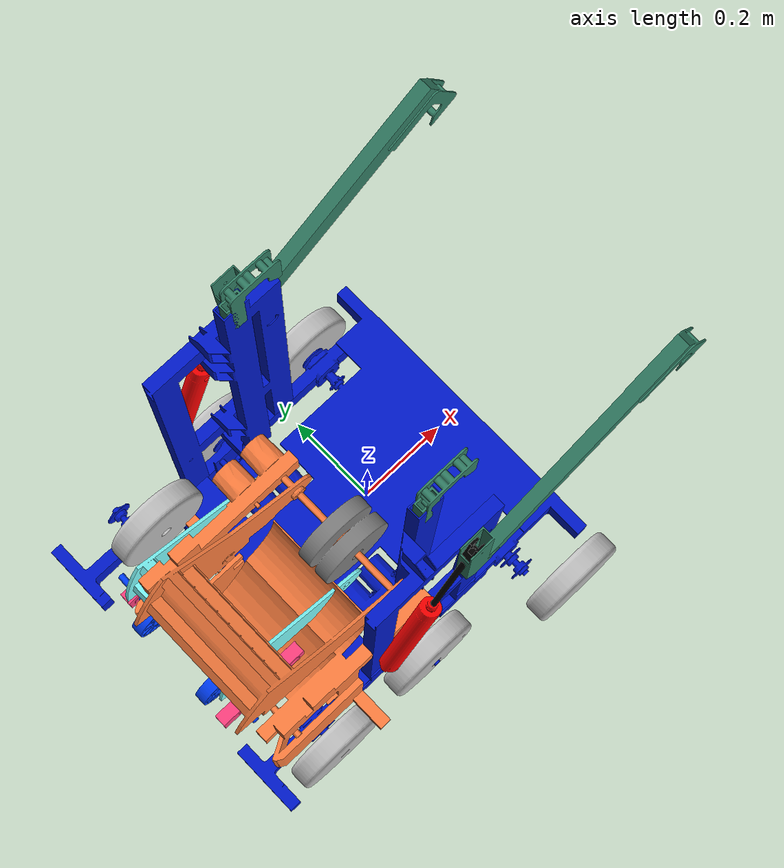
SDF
<?xml version="1.0" encoding="utf-8"?>
<sdf version="1.7">
  <model name="SimBot2022">
    <pose>0 0 0 0 0 0</pose>
    <link name="Frame">
      <gravity>1</gravity>
      <self_collide>0</self_collide>
      <pose>-0.0916854891449772 0 -0.0184942437490389 1.5707963267949 0 -1.5707963267949</pose>
      <must_be_base_link>1</must_be_base_link>
     <inertial>
        <mass>50</mass>
        <pose>0 0 0 0 0 0</pose>
        <inertia>
          <ixx>5</ixx>
          <ixy>0.014</ixy>
          <ixz>0.015</ixz>
          <iyy>7</iyy>
          <iyz>0</iyz>
          <izz>2</izz>
        </inertia>
      </inertial>
      <collision name="Frame_collision">
        <pose>0.087928821262285 -0.0052889773385317 0.00114418280918003 0 0 0</pose>
        <geometry>
          <mesh>
            <scale>1 1 1</scale>
            <uri>model://SimBot2022/meshes/Frame_col.STL</uri>
          </mesh>
        </geometry>
      </collision>
      <visual name="Frame_visual">
        <pose>0.087928821262285 -0.0052889773385317 0.00114418280918003 0 0 0</pose>
        <material>
         <ambient>0 0.1 0.8 1</ambient>
         <diffuse>0 0.1 0.8 1</diffuse>
        </material>
        <geometry>
          <mesh>
            <scale>1 1 1</scale>
            <uri>model://SimBot2022/meshes/Frame.STL</uri>
          </mesh>
        </geometry>
      </visual>
       <sensor name="BackCamera" type="camera">
        <visualize>0</visualize>
        <always_on>1</always_on>
        <pose>0.0 0.0 0.25 0 4.7 4.71238898038469</pose>
        <camera name="intakecamera">
          <horizontal_fov>1.04</horizontal_fov>
          <image>
            <width>640</width>
            <height>480</height>
            <format>R8G8B8</format>
          </image>
          <clip>
            <near>0.01</near>
            <far>50</far>
          </clip>
        </camera>
        <plugin name="camera2" filename="sim_camera.dll">
          <topic>~/gazebo/frc/simulator/camera/1</topic>
          <port>9001</port>
          <fps>20</fps>
          <enabled>true</enabled>
          <savepath>tmp</savepath>
          <maxframes>0</maxframes>
          <video>back.avi</video>
        </plugin>
      </sensor>
    </link>
    <link name="shooter">
      <self_collide>0</self_collide>
      <pose>-0.339857661155341 0.00613558288465832 0.112751803631496 1.5707963267949 0 -1.5707963267949</pose>
      <must_be_base_link>0</must_be_base_link>
      <gravity>1</gravity>
      <inertial>
        <mass>5.22101990724176</mass>
        <pose>0 0 0 0 0 0</pose>
      </inertial>
      <collision name="shooter_collision">
        <pose>0.094064405138414 -0.136535024719067 -0.247027989201184 0 0 0</pose>
        <geometry>
          <mesh>
            <scale>1 1 1</scale>
            <uri>model://SimBot2022/meshes/shooter.STL</uri>
          </mesh>
        </geometry>
        <surface>
          <contact>
              <ode>
              <min_depth>0.001</min_depth>
              <kp>1e8</kp>
              <kd>1000</kd>
            </ode>
          </contact>
           <friction>
            <ode>
              <mu>0</mu>
              <mu2>0</mu2>
              <slip1>0.9</slip1>
              <slip2>0.9</slip2>
            </ode>
          </friction>
        </surface>
      </collision>
      <visual name="shooter_visual">
        <pose>0.094064405138414 -0.136535024719067 -0.247027989201184 0 0 0</pose>
        <material>
         <ambient>1 0.5 0.25 1</ambient>
          <diffuse>1 0.5 0.25 1</diffuse>
        </material>
        <geometry>
          <mesh>
            <scale>1 1 1</scale>
            <uri>model://SimBot2022/meshes/shooter.STL</uri>
          </mesh>
        </geometry>
      </visual>
      <sensor name="Frontcamera" type="camera">
        <visualize>0</visualize>
        <always_on>1</always_on>
        <pose>0.0 0.25 -0.3 0 0.9 1.57</pose>
        <camera name="frontcamera">
          <horizontal_fov>1.04</horizontal_fov>
           <image>
            <width>640</width>
            <height>480</height>
            <format>R8G8B8</format>
          </image>
          <clip>
            <near>0.1</near>
            <far>100</far>
          </clip>
        </camera>
        <plugin name="camera1" filename="sim_camera.dll">
          <topic>~/gazebo/frc/simulator/camera/0</topic>
          <port>9000</port>
          <fps>20</fps>
          <enabled>true</enabled>
          <savepath>tmp</savepath>
          <maxframes>0</maxframes>
          <video>front.avi</video>
        </plugin>
      </sensor>
    </link>
    <joint name="Frame-shooter" type="revolute">
      <parent>Frame</parent>
      <child>shooter</child>
      <axis>
        <xyz>1 0 0</xyz>
          <limit>
          <upper>0.0</upper>
          <lower>0.0</lower>
          </limit>
      </axis>
    </joint>
    <link name="ShooterWheels">
      <gravity>1</gravity>
      <self_collide>0</self_collide>
      <pose>-0.177655024091721 0.0 0.196849999999108 1.5707963267949 0 -1.5707963267949</pose>
      <must_be_base_link>0</must_be_base_link>
      <inertial>
        <mass>1e-2</mass>
        <pose>0 0 0 0 0 0</pose>
          <inertia>
          <ixx>0</ixx>
          <ixy>0</ixy>
          <ixz>0</ixz>
          <iyy>0</iyy>
          <iyz>0</iyz>
          <izz>0</izz>
        </inertia>
      </inertial>

      <collision name="ShooterWheels_collision">
        <pose>0.0854209462093988 -0.220633221086678 -0.0848253521375637 0 0 0</pose>
        <geometry>
          <mesh>
            <scale>1 1 1</scale>
            <uri>model://SimBot2022/meshes/ShooterWheels_col.STL</uri>
          </mesh>
        </geometry>
        <surface>
          <contact>
            <ode>
              <kd>10</kd>
              <kp>5e6</kp>
              <soft_cfm>2.0</soft_cfm>
              <min_depth>0.001</min_depth>
            </ode>
          </contact>
          <friction>
            <ode>
              <mu>2</mu>
              <mu2>2</mu2>
            </ode>
          </friction>
        </surface>
      </collision>
      <visual name="ShooterWheels_visual">
        <pose>0.0854209462093988 -0.220633221086678 -0.0848253521375637 0 0 0</pose>
        <material>
          <ambient>0.501960784313725 0.501960784313725 0.501960784313725 1</ambient>
          <diffuse>0.501960784313725 0.501960784313725 0.501960784313725 1</diffuse>
        </material>
        <geometry>
          <mesh>
            <scale>1 1 1</scale>
            <uri>model://SimBot2022/meshes/ShooterWheels.STL</uri>
          </mesh>
        </geometry>
      </visual>
    </link>
    <link name="LimitSwitch">
      <gravity>1</gravity>
      <self_collide>0</self_collide>
      <pose>-0.31 -0.00167438091144598 0.0190079876439564 1.5707963267949 0 -1.5707963267949</pose>
      <must_be_base_link>0</must_be_base_link>
      <inertial>
        <mass>0.00457179713622319</mass>
        <pose>0 0 0 0 0 0</pose>
        <inertia>
          <ixx>0</ixx>
          <ixy>0</ixy>
          <ixz>0</ixz>
          <iyy>0</iyy>
          <iyz>0</iyz>
          <izz>0</izz>
        </inertia>
      </inertial>
      <collision name="LimitSwitch_collision">
        <pose>0.0862544413423097 -0.042791208731527 -0.20010896601299 0 0 0</pose>
        <geometry>
          <mesh>
            <scale>1.0 1.0 1.0</scale>
            <uri>model://SimBot2022/meshes/LimitSwitch_col.STL</uri>
          </mesh>
        </geometry>
         <friction>
            <ode>
              <mu>0</mu>
              <mu2>0</mu2>
            </ode>
          </friction>
        <surface>
          <contact>
           <ode>
            <kd>10</kd>
            <kp>10</kp>
          </ode>
          </contact>
        </surface>

      </collision>
      <visual name="LimitSwitch_visual">
        <pose>0.0862544413423097 -0.042791208731527 -0.20010896601299 0 0 0</pose>
        <material>
          <ambient>1 0 0 1</ambient>
          <diffuse>1 0 0 1</diffuse>
        </material>
        <geometry>
          <mesh>
            <scale>1.0 1.0 1.0</scale>
            <uri>model://SimBot2022/meshes/LimitSwitch.STL</uri>
          </mesh>
        </geometry>
      </visual>
      <sensor name="LimitSwitch_contact" type="contact">
        <always_on>1</always_on>
        <contact>
          <collision>LimitSwitch_collision</collision>
        </contact>

        <plugin name="contact_test" filename="sim_contact.dll">
          <topic>~/gazebo/frc/simulator/contact/0</topic>
        </plugin>
      </sensor>
    </link>
    <joint name="shooter-LimitSwitch" type="fixed">
      <parent>Frame</parent>
      <child>LimitSwitch</child>
       <pose>0.26 -1.85 0.13 0 0 0</pose>
      <axis>
        <xyz>1 0 0</xyz>
        <limit>
          <upper>0</upper>
          <lower>0</lower>
        </limit>
      </axis>
    </joint>
    <joint name="shooter-ShooterWheels" type="revolute">
      <parent>shooter</parent>
      <child>ShooterWheels</child>
      <pose>0 0 0 0 0 0</pose>
      <axis>
        <xyz>1 0 0</xyz>
      </axis>
    </joint>
    <link name="Shield">
      <gravity>1</gravity>
      <self_collide>0</self_collide>
      <pose>-0.382938517439548 -6.05657531295434E-05 0.270040381431298 1.5707963267949 0 -1.5707963267949</pose>
      <must_be_base_link>0</must_be_base_link>

      <inertial>
        <mass>1e-2</mass>
        <pose>0 0 0 0 0 0</pose>
        <inertia>
          <ixx>0.00558354491864702</ixx>
          <ixy>0</ixy>
          <ixz>0</ixz>
          <iyy>0.0140256747777912</iyy>
          <iyz>0.0016963246209557</iyz>
          <izz>0.0112740976678991</izz>
        </inertia>
      </inertial>
      <collision name="Shield_collision">
        <pose>0.0878682565006262 -0.293823602518869 -0.290108845485391 0 0 0</pose>
        <geometry>
          <mesh>
            <scale>1 1 1</scale>
            <uri>model://SimBot2022/meshes/Shield.STL</uri>
          </mesh>
        </geometry>
        <surface>
          <contact>
            <ode />
          </contact>
          <friction>
            <ode>
              <mu>0</mu>
              <mu2>0</mu2>
            </ode>
          </friction>
        </surface>
      </collision>
      <visual name="Shield_visual">
        <pose>0.0878682565006262 -0.293823602518869 -0.290108845485391 0 0 0</pose>
        <material>
          <ambient>0.501960784313725 1 1 1</ambient>
          <diffuse>0.501960784313725 1 1 1</diffuse>
        </material>
        <geometry>
          <mesh>
            <scale>1 1 1</scale>
            <uri>model://SimBot2022/meshes/Shield.STL</uri>
          </mesh>
        </geometry>
      </visual>
    </link>
    <joint name="shooter-Shield" type="revolute">
      <parent>shooter</parent>
      <child>Shield</child>
      <pose>0 -0.0731903814322627 -0.205283493605891 0 0 0</pose>
      <axis>
        <xyz>-1 0 0</xyz>
        <dynamics>
          <damping>0</damping>
          <friction>0</friction>
        </dynamics>
        <limit>
          <upper>-0.1</upper>
          <lower>-0.1</lower>
          <effort>1</effort>
        </limit>
      </axis>
    </joint>
    <link name="Intake">
      <gravity>1</gravity>
      <self_collide>0</self_collide>
      <pose>-0.424484874242734 9.92754253803518E-09 0.120699564654734 1.5707963267949 0 -1.5707963267949</pose>
      <must_be_base_link>0</must_be_base_link>
      <inertial>
        <mass>1e-2</mass>
        <pose>0 0 0 0 0 0</pose>
        <inertia>
          <ixx>0</ixx>
          <ixy>0</ixy>
          <ixz>0</ixz>
          <iyy>0</iyy>
          <iyz>0</iyz>
          <izz>0</izz>
        </inertia>
      </inertial>
      <collision name="Intake_collision">
        <pose>0.0879288321812983 -0.144482785742305 -0.331655202288577 0 0 0</pose>
        <geometry>
          <mesh>
            <scale>1 1 1</scale>
            <uri>model://SimBot2022/meshes/Intake.STL</uri>
          </mesh>
        </geometry>
        <surface>
          <contact>
            <ode>
            </ode>
          </contact>
          <friction>
            <ode>
              <mu>1</mu>
              <mu2>1</mu2>
            </ode>
          </friction>
        </surface>
      </collision>
      <visual name="Intake_visual">
        <pose>0.0879288321812983 -0.144482785742305 -0.331655202288577 0 0 0</pose>
        <material>
          <ambient>1 0.250980392156863 0.501960784313725 1</ambient>
          <diffuse>1 0.250980392156863 0.501960784313725 1</diffuse>
        </material>
        <geometry>
          <mesh>
            <scale>1 1 1</scale>
            <uri>model://SimBot2022/meshes/Intake.STL</uri>
          </mesh>
        </geometry>
      </visual>
    </link>
    <link name="Climber">
      <gravity>1</gravity>
      <self_collide>0</self_collide>
      <pose>-0.108165830024222 -0.00754421414214484 0.403396336666603 1.5707963267949 0 -1.5707963267949</pose>
      <must_be_base_link>0</must_be_base_link>

      <inertial>
        <mass>1e-2</mass>
        <pose>0 0 0 0 0 0</pose>
        <inertia>
          <ixx>0.180340671375589</ixx>
          <ixy>0.0178859329714001</ixy>
          <ixz>3.69107620819764E-05</ixz>
          <iyy>0.376849226291127</iyy>
          <iyz>0.00174995637583662</iyz>
          <izz>0.483303651275777</izz>
        </inertia>
      </inertial>
      <collision name="Climber_collision">
        <pose>0.0803846081116108 -0.427179557754174 -0.0153361580700651 0 0 0</pose>
        <geometry>
          <mesh>
            <scale>1 1 1</scale>
            <uri>model://SimBot2022/meshes/Climber.STL</uri>
          </mesh>
        </geometry>
        <surface>
          <contact>
            <ode />
          </contact>
          <friction>
            <ode>
              <mu>0</mu>
              <mu2>0</mu2>
            </ode>
          </friction>
        </surface>
      </collision>
      <visual name="Climber_visual">
        <pose>0.0803846081116108 -0.427179557754174 -0.0153361580700651 0 0 0</pose>
        <material>
          <ambient>0 0.1 0.8 1</ambient>
          <diffuse>0 0.1 0.8 1</diffuse>
        </material>
        <geometry>
          <mesh>
            <scale>1 1 1</scale>
            <uri>model://SimBot2022/meshes/Climber.STL</uri>
          </mesh>
        </geometry>
      </visual>
    </link>
    <joint name="Frame-Climber" type="fixed">
      <parent>Frame</parent>
      <child>Climber</child>
      <pose>0.0803846081116108 -0.427179557754174 -0.0153361580700651 0 0 0</pose>
      <axis>
        <xyz>0 0 0</xyz>
        <dynamics>
          <damping>0</damping>
          <friction>0</friction>
        </dynamics>
        <limit>
          <upper>0</upper>
          <lower>0</lower>
          <effort>1</effort>
        </limit>
      </axis>
    </joint>

    <link name="VertHooks">
      <gravity>1</gravity>
      <self_collide>0</self_collide>
      <pose>-0.0899896312618392 0 0.6 1.5707963267949 0 -1.5707963267949</pose>
      <must_be_base_link>0</must_be_base_link>
      <inertial>
        <mass>1e-2</mass>
        <pose>0 0 0 0 0 0</pose>
        <inertia>
          <ixx>0.00137697291971476</ixx>
          <ixy>0</ixy>
          <ixz>0</ixz>
          <iyy>0.005964984736658</iyy>
          <iyz>0.000120054703079532</iyz>
          <izz>0.00731302280905016</izz>
        </inertia>
      </inertial>
      <collision name="VertHooks_collision">
        <pose>0.0879288222537543 -1.0367472399474 0.00284004069231772 0 0 0</pose>
        <geometry>
          <mesh>
            <scale>1 1 1</scale>
            <uri>model://SimBot2022/meshes/VertHooks.STL</uri>
          </mesh>

        </geometry>
         <surface>
          <contact>
            <ode>
              <min_depth>0.0001</min_depth>
              <kd>1</kd>
              <kp>1e9</kp>
            </ode>
          </contact>
          <friction>
            <ode>
              <mu>1</mu>
              <mu2>1</mu2>
            </ode>
          </friction>
        </surface>

      </collision>
      <visual name="VertHooks_visual">
        <pose>0.0879288222537543 -1.0367472399474 0.00284004069231772 0 0 0</pose>
        <material>
          <ambient>0.2 0.5 0.4 1</ambient>
          <diffuse>0.2 0.5 0.4 1</diffuse>
        </material>
        <geometry>
          <mesh>
            <scale>1 1 1</scale>
            <uri>model://SimBot2022/meshes/VertHooks.STL</uri>
          </mesh>
        </geometry>
      </visual>
    </link>
    <joint name="Climber-VertHooks" type="prismatic">
      <parent>Climber</parent>
      <child>VertHooks</child>
      <pose>0 0.0 0 0 0 0</pose>
      <pose>-0.19685 0 0.0312719304731663 0 0 0</pose>
      <axis>
        <xyz>0 1 0</xyz>
        <dynamics>
          <damping>6</damping>
          <friction>1</friction>
        </dynamics>

        <limit>
          <upper>0.6</upper>
          <lower>0</lower>
          <velocity>8</velocity>
        </limit>

      </axis>
    </joint>

    <link name="DiagHooks">
      <gravity>1</gravity>
      <self_collide>0</self_collide>
      <pose>0.183295209439459 0.00126999999999841 0.665732235239805 1.5707963267949 0 -1.5707963267949</pose>
      <must_be_base_link>0</must_be_base_link>

      <inertial>
        <mass>1e-2</mass>
        <pose>0 0 0 0 0 0</pose>
        <inertia>
          <ixx>0.00764916813046532</ixx>
          <ixy>0.000424936229635824</ixy>
          <ixz>0.000704880198439671</ixz>
          <iyy>0.146329646890558</iyy>
          <iyz>0.00076342518268873</iyz>
          <izz>0.138856767131751</izz>
        </inertia>
      </inertial>
      <collision name="DiagHooks_collision">
        <pose>0.089198822253754 -0.689515456327376 0.276124881393616 0 0 0</pose>
        <geometry>
          <mesh>
            <scale>1 1 1</scale>
            <uri>model://SimBot2022/meshes/DiagHooks.STL</uri>
          </mesh>
        </geometry>
        <surface>
          <contact>
            <ode>
              <min_depth>0.001</min_depth>
              <kd>1</kd>
              <kp>1e7</kp>
            </ode>
          </contact>
          <friction>
            <ode>
              <mu>1</mu>
              <mu2>1</mu2>
            </ode>
          </friction>
        </surface>
      </collision>
      <visual name="DiagHooks_visual">
        <pose>0.089198822253754 -0.689515456327376 0.276124881393616 0 0 0</pose>
        <material>
          <ambient>0.2 0.5 0.4 1</ambient>
          <diffuse>0.2 0.5 0.4 1</diffuse>
        </material>
        <geometry>
          <mesh>
            <scale>1 1 1</scale>
            <uri>model://SimBot2022/meshes/DiagHooks.STL</uri>
          </mesh>
        </geometry>
      </visual>
    </link>
    <joint name="Climber-DiagHooks" type="revolute">
      <parent>Climber</parent>
      <child>DiagHooks</child>
      <pose>0 -0.113282237666155 0.177556774409909 0 0 0</pose>

      <axis>
        <xyz>1 0 0</xyz>
        <dynamics>
          <damping>0</damping>
          <friction>0</friction>
        </dynamics>
        <limit>
          <upper>1.5</upper>
          <lower>-0.5</lower>

        </limit>
      </axis>
    </joint>
    <joint name="DiagHooks-PistonRods" type="revolute">
      <parent>DiagHooks</parent>
      <child>PistonRods</child>
      <pose>0 0.0104158787113845 0.0117395065044273 0 0 0</pose>
      <axis>
        <xyz>1 0 0</xyz>
        <dynamics>
          <damping>0</damping>
          <friction>0</friction>
        </dynamics>
      </axis>
    </joint>
    <link name="Piston">
      <gravity>1</gravity>
      <self_collide>0</self_collide>
      <pose>-0.174869870786539 0.00227777821870752 0.368539982718424 1.5707963267949 0 -1.5707963267949</pose>
      <must_be_base_link>0</must_be_base_link>
      <inertial>
        <mass>1e-2</mass>
        <pose>0 0 0 0 0 0</pose>
        <inertia>
          <ixx>2.98130535270462E-05</ixx>
          <ixy>0</ixy>
          <ixz>0</ixz>
          <iyy>1.19795285458249E-04</iyy>
          <iyz>0</iyz>
          <izz>1.44652851851309E-04</izz>
        </inertia>
      </inertial>
      <collision name="Piston_collision">
        <pose>0.0902066004724632 -0.392323203805995 -0.0820401988323822 0 0 0</pose>
        <geometry>
          <mesh>
            <scale>1 1 1</scale>
            <uri>model://SimBot2022/meshes/Piston.STL</uri>
          </mesh>
        </geometry>
        <surface>
          <contact>
            <ode />
          </contact>
          <friction>
            <ode>
              <mu>0</mu>
              <mu2>0</mu2>
            </ode>
          </friction>
        </surface>
      </collision>
      <visual name="Piston_visual">
        <pose>0.0902066004724632 -0.392323203805995 -0.0820401988323822 0 0 0</pose>
        <material>
          <ambient>1 0 0 1</ambient>
          <diffuse>1 0 0 1</diffuse>
        </material>
        <geometry>
          <mesh>
            <scale>1 1 1</scale>
            <uri>model://SimBot2022/meshes/Piston.STL</uri>
          </mesh>
        </geometry>
      </visual>
    </link>
    <joint name="Climber-Piston" type="revolute">
      <parent>Climber</parent>
      <child>Piston</child>
      <pose>0 -0.171689985144763 0.0 0 0 0</pose>
      <axis>
        <xyz>1 0 0</xyz>
        <dynamics>
          <damping>0</damping>
          <friction>0</friction>
        </dynamics>
      </axis>
    </joint>
    <link name="PistonRods">
      <gravity>1</gravity>
      <self_collide>0</self_collide>
      <pose>-0.0828529879447265 0.00196850000000066 0.675813105104607 1.5707963267949 0 -1.5707963267949</pose>
      <must_be_base_link>0</must_be_base_link>

      <inertial>
        <mass>1e-2</mass>
        <pose>0 0 0 0 0 0</pose>
        <inertia>
          <ixx>4.36637761620829E-05</ixx>
          <ixy>6.21299586628527E-05</ixy>
          <ixz>9.81932445003251E-05</ixz>
          <iyy>0.0016465181163977</iyy>
          <iyz>1.34053408966147E-05</iyz>
          <izz>0.00167258481144701</izz>
        </inertia>
      </inertial>
      <collision name="PistonRods_collision">
        <pose>0.0898973222537563 -0.699596326192178 0.00997668400943053 0 0 0</pose>
        <geometry>
          <mesh>
            <scale>1 1 1</scale>
            <uri>model://SimBot2022/meshes/PistonRods.STL</uri>
          </mesh>
        </geometry>
        <surface>
          <contact>
            <ode />
          </contact>
          <friction>
            <ode>
              <mu>0</mu>
              <mu2>0</mu2>
            </ode>
          </friction>
        </surface>
      </collision>
      <visual name="PistonRods_visual">
        <pose>0.0898973222537563 -0.699596326192178 0.00997668400943053 0 0 0</pose>
        <material>
          <ambient>0 0 0 1</ambient>
          <diffuse>0 0 0 1</diffuse>
        </material>
        <geometry>
          <mesh>
            <scale>1 1 1</scale>
            <uri>model://SimBot2022/meshes/PistonRods.STL</uri>
          </mesh>
        </geometry>
      </visual>
    </link>
    <joint name="Piston-PistonRods" type="prismatic">
      <parent>Piston</parent>
      <child>PistonRods</child>
      <pose>0.292100000000002 0.00364184932885847 0.0135589700495809 0 0 0</pose>
      <axis>
        <xyz>6.47015957867634E-16 -0.965770063546253 0.259399661445165</xyz>
        <dynamics>
          <damping>0</damping>
          <friction>0</friction>
        </dynamics>
        <limit>
          <upper>0.5</upper>
          <lower>-0.4</lower>
          <velocity>0.5</velocity>
        </limit>
      </axis>
    </joint>
    <joint name="shooter-Intake" type="revolute">
      <parent>shooter</parent>
      <child>Intake</child>
      <pose>0.0879288321812983 -0.144482785742305 -0.331655202288577 0 0 0</pose>
      <axis>
        <xyz>-1 0 0</xyz>
        <dynamics>
          <damping>4</damping>
          <friction>1</friction>
        </dynamics>

        <limit>
          <upper>-0.01</upper>
          <lower>-0.15</lower>
        </limit>
      </axis>
    </joint>
    <link name="IntakeWheels">
      <gravity>1</gravity>
      <self_collide>0</self_collide>
      <pose>-0.469753566757535 -0.0108552498965759 0.120727981986896 1.5707963267949 0 -1.5707963267949</pose>
      <must_be_base_link>0</must_be_base_link>
      <inertial>
        <mass>1e-2</mass>
        <pose>0 0 0 0 0 0</pose>
        <inertia>
          <ixx>0</ixx>
          <ixy>0</ixy>
          <ixz>0</ixz>
          <iyy>0</iyy>
          <iyz>0</iyz>
          <izz>0</izz>
        </inertia>
      </inertial>
      <collision name="IntakeWheels_collision">
        <pose>0.0770735723571798 -0.144511203074467 -0.376923894803378 0 0 0</pose>
        <geometry>
          <mesh>
            <scale>1 1 1</scale>
            <uri>model://SimBot2022/meshes/IntakeWheels_col.STL</uri>
          </mesh>
        </geometry>
        <surface>
          <contact>
            <ode>
              <min_depth>0.0001</min_depth>
              <soft_cfm>2.0</soft_cfm>
              <kd>10</kd>
              <kp>1e6</kp>
            </ode>
          </contact>
          <friction>
            <ode>
              <mu>2</mu>
              <mu2>2</mu2>
            </ode>
          </friction>
        </surface>
      </collision>
      <visual name="IntakeWheels_visual">
        <pose>0.0770735723571798 -0.144511203074467 -0.376923894803378 0 0 0</pose>
        <material>
          <ambient>0 0.250980392156863 1 1</ambient>
          <diffuse>0 0.250980392156863 1 1</diffuse>
        </material>
        <geometry>
          <mesh>
            <scale>1 1 1</scale>
            <uri>model://SimBot2022/meshes/IntakeWheels.STL</uri>
          </mesh>
        </geometry>
      </visual>
    </link>
    <joint name="Intake-IntakeWheels" type="revolute">
      <parent>Intake</parent>
      <child>IntakeWheels</child>
      <pose>0 0 0 0 0 0</pose>
      <axis>
        <xyz>1 0 0</xyz>
        <dynamics>
          <damping>2</damping>
          <friction>1</friction>
        </dynamics>
        <limit>
          <effort>50</effort>
        </limit>
      </axis>
    </joint>
    <link name="LFWheel">
      <gravity>1</gravity>
      <self_collide>0</self_collide>
      <pose>-0.383733921516064 -0.315899209940694 -0.0302259999999987 1.5707963267949 0 -1.5707963267949</pose>
      <must_be_base_link>0</must_be_base_link>
      <velocity_decay>
        <linear>0</linear>
        <angular>0.03</angular>
      </velocity_decay>
      <inertial>
        <mass>1</mass>
        <pose>0 0 0 0 0 0</pose>
        <inertia>
          <ixx>0.00636122013463714</ixx>
          <ixy>0</ixy>
          <ixz>1.02386629412868E-19</ixz>
          <iyy>0.00340889332640425</iyy>
          <iyz>0</iyz>
          <izz>0.00340889332640425</izz>
        </inertia>
      </inertial>
      <collision name="LFWheel_collision">
        <pose>-0.227970387686939 0.00644277891242817 -0.290904249561907 0 0 0</pose>
        <geometry>
          <mesh>
            <scale>1 1 1</scale>
            <uri>model://SimBot2022/meshes/LFWheel_col.STL</uri>
          </mesh>
        </geometry>
        <surface>
          <contact>
          <ode>
            <kd>25</kd>
            <kp>1e7</kp>
            <min_depth>0.0001</min_depth>
          </ode>
          </contact>
              <friction>
                <ode>
                  <mu>2</mu>
                  <mu2>2</mu2>
                </ode>
              </friction>
          </surface>
      </collision>
      <visual name="LFWheel_visual">
        <pose>-0.227970387686939 0.00644277891242817 -0.290904249561907 0 0 0</pose>
        <material>
          <ambient>0.752941176470588 0.752941176470588 0.752941176470588 1</ambient>
          <diffuse>0.752941176470588 0.752941176470588 0.752941176470588 1</diffuse>
        </material>
        <geometry>
          <mesh>
            <scale>1 1 1</scale>
            <uri>model://SimBot2022/meshes/LFWheel.STL</uri>
          </mesh>
        </geometry>
      </visual>
    </link>
    <joint name="Frame-LFWheel" type="revolute">
      <parent>Frame</parent>
      <child>LFWheel</child>
      <pose>0 0 0 0 0 0</pose>
      <axis>
        <xyz>-1 0 0</xyz>
        <dynamics>
          <damping>2</damping>
          <friction>1</friction>
        </dynamics>
        <limit>
          <effort>50</effort>
        </limit>
      </axis>
    </joint>
    <link name="LCWheel">
      <gravity>1</gravity>
      <self_collide>0</self_collide>
      <pose>-0.129733921516064 -0.311136709940694 -0.0302259999999999 1.5707963267949 0 -1.5707963267949</pose>
      <must_be_base_link>0</must_be_base_link>
      <velocity_decay>
        <linear>0</linear>
        <angular>0.03</angular>
      </velocity_decay>
      <inertial>
        <mass>1</mass>
        <pose>0 0 0 0 0 0</pose>
        <inertia>
          <ixx>0.00636122013463714</ixx>
          <ixy>7.97906990264509E-20</ixy>
          <ixz>1.02386629412868E-19</ixz>
          <iyy>0.00340889332640425</iyy>
          <iyz>3.68262106610134E-19</iyz>
          <izz>0.00340889332640425</izz>
        </inertia>
      </inertial>
      <collision name="LCWheel_collision">
        <pose>-0.223207887686939 0.00644277891242926 -0.0369042495619069 0 0 0</pose>
        <geometry>
          <mesh>
            <scale>1 1 1</scale>
            <uri>model://SimBot2022/meshes/LCWheel_col.STL</uri>
          </mesh>
        </geometry>
        <surface>
          <contact>
          <ode>
            <kd>25</kd>
            <kp>1e7</kp>
            <min_depth>0.0001</min_depth>
          </ode>
          </contact>
              <friction>
                <ode>
                  <mu>2</mu>
                  <mu2>2</mu2>
                </ode>
              </friction>
          </surface>
      </collision>
      <visual name="LCWheel_visual">
        <pose>-0.223207887686939 0.00644277891242926 -0.0369042495619069 0 0 0</pose>
        <material>
          <ambient>0.752941176470588 0.752941176470588 0.752941176470588 1</ambient>
          <diffuse>0.752941176470588 0.752941176470588 0.752941176470588 1</diffuse>
        </material>
        <geometry>
          <mesh>
            <scale>1 1 1</scale>
            <uri>model://SimBot2022/meshes/LCWheel.STL</uri>
          </mesh>
        </geometry>
      </visual>
    </link>
    <joint name="Frame-LCWheel" type="revolute">
      <parent>Frame</parent>
      <child>LCWheel</child>
      <pose>0 0 0 0 0 0</pose>
      <axis>
        <xyz>-1 0 0</xyz>
        <dynamics>
          <damping>2</damping>
          <friction>1</friction>
        </dynamics>
        <limit>
          <effort>50</effort>
        </limit>
      </axis>
    </joint>
    <link name="LBWheel">
      <gravity>1</gravity>
      <self_collide>0</self_collide>
      <pose>0.124266078483936 -0.315899209940694 -0.030226000000001 1.5707963267949 0 -1.5707963267949</pose>
      <must_be_base_link>0</must_be_base_link>
      <velocity_decay>
        <linear>0</linear>
        <angular>0.03</angular>
      </velocity_decay>
      <inertial>
        <mass>1</mass>
        <pose>0 0 0 0 0 0</pose>
        <inertia>
          <ixx>0.00636122013463714</ixx>
          <ixy>7.97906990264509E-20</ixy>
          <ixz>1.02386629412868E-19</ixz>
          <iyy>0.00340889332640425</iyy>
          <iyz>3.68262106610134E-19</iyz>
          <izz>0.00340889332640425</izz>
        </inertia>
      </inertial>
      <collision name="LBWheel_collision">
        <pose>-0.227970387686938 0.00644277891243034 0.217095750438093 0 0 0</pose>
        <geometry>
          <mesh>
            <scale>1 1 1</scale>
            <uri>model://SimBot2022/meshes/LBWheel_col.STL</uri>
          </mesh>
        </geometry>
        <surface>
          <contact>
          <ode>
            <kd>25</kd>
            <kp>1e7</kp>
            <min_depth>0.0001</min_depth>
          </ode>
          </contact>
              <friction>
                <ode>
                  <mu>2</mu>
                  <mu2>2</mu2>
                </ode>
              </friction>
          </surface>
      </collision>
      <visual name="LBWheel_visual">
        <pose>-0.227970387686938 0.00644277891243034 0.217095750438093 0 0 0</pose>
        <material>
          <ambient>0.752941176470588 0.752941176470588 0.752941176470588 1</ambient>
          <diffuse>0.752941176470588 0.752941176470588 0.752941176470588 1</diffuse>
        </material>
        <geometry>
          <mesh>
            <scale>1 1 1</scale>
            <uri>model://SimBot2022/meshes/LBWheel.STL</uri>
          </mesh>
        </geometry>
      </visual>
    </link>
    <joint name="Frame-LBWheel" type="revolute">
      <parent>Frame</parent>
      <child>LBWheel</child>
      <pose>0 0 0 0 0 0</pose>
      <axis>
        <xyz>-1 0 0</xyz>
        <dynamics>
          <damping>2</damping>
          <friction>1</friction>
        </dynamics>
        <limit>
          <effort>50</effort>
        </limit>
      </axis>
    </joint>
    <link name="RFWheel">
      <gravity>1</gravity>
      <self_collide>0</self_collide>
      <pose>-0.383645321120682 0.315899209940691 -0.0302259999999987 1.5707963267949 0 -1.5707963267949</pose>
      <must_be_base_link>0</must_be_base_link>
      <velocity_decay>
        <linear>0</linear>
        <angular>0.03</angular>
      </velocity_decay>
      <inertial>
        <mass>1</mass>
        <pose>0 0 0 0 0 0</pose>
        <inertia>
          <ixx>0.00636122013463714</ixx>
          <ixy>7.97906990264509E-20</ixy>
          <ixz>1.02386629412868E-19</ixz>
          <iyy>0.00340889332640425</iyy>
          <iyz>3.68262106610134E-19</iyz>
          <izz>0.00340889332640425</izz>
        </inertia>
      </inertial>
      <collision name="RFWheel_collision">
        <pose>0.403828032194447 0.0064427789124282 -0.290815649166525 0 0 0</pose>
        <geometry>
          <mesh>
            <scale>1 1 1</scale>
            <uri>model://SimBot2022/meshes/RFWheel_col.STL</uri>
          </mesh>
        </geometry>
        <surface>
          <contact>
          <ode>
            <kd>25</kd>
            <kp>1e7</kp>
            <min_depth>0.0001</min_depth>
          </ode>
          </contact>
              <friction>
                <ode>
                  <mu>2</mu>
                  <mu2>2</mu2>
                </ode>
              </friction>
          </surface>
      </collision>
      <visual name="RFWheel_visual">
        <pose>0.403828032194447 0.0064427789124282 -0.290815649166525 0 0 0</pose>
        <material>
          <ambient>0.752941176470588 0.752941176470588 0.752941176470588 1</ambient>
          <diffuse>0.752941176470588 0.752941176470588 0.752941176470588 1</diffuse>
        </material>
        <geometry>
          <mesh>
            <scale>1 1 1</scale>
            <uri>model://SimBot2022/meshes/RFWheel.STL</uri>
          </mesh>
        </geometry>
      </visual>
    </link>
    <joint name="Frame-RFWheel" type="revolute">
      <parent>Frame</parent>
      <child>RFWheel</child>
     <pose>0 0 0 0 0 0</pose>
      <axis>
        <xyz>1 0 0</xyz>
        <dynamics>
          <damping>2</damping>
          <friction>1</friction>
        </dynamics>
        <limit>
          <effort>50</effort>
        </limit>
      </axis>
    </joint>
    <link name="RCWheel">
      <gravity>1</gravity>
      <self_collide>0</self_collide>
      <pose>-0.129645321120682 0.311136709940692 -0.0302259999999999 1.5707963267949 0 -1.5707963267949</pose>
      <must_be_base_link>0</must_be_base_link>
      <velocity_decay>
        <linear>0</linear>
        <angular>0.03</angular>
      </velocity_decay>
      <inertial>
        <mass>1</mass>
        <pose>0 0 0 0 0 0</pose>
        <inertia>
          <ixx>0.00636122013463714</ixx>
          <ixy>7.97906990264509E-20</ixy>
          <ixz>1.02386629412868E-19</ixz>
          <iyy>0.00340889332640425</iyy>
          <iyz>3.68262106610134E-19</iyz>
          <izz>0.00340889332640425</izz>
        </inertia>
      </inertial>
      <collision name="RCWheel_collision">
        <pose>0.399065532194447 0.00644277891242927 -0.0368156491665249 0 0 0</pose>
        <geometry>
          <mesh>
            <scale>1 1 1</scale>
            <uri>model://SimBot2022/meshes/RCWheel_col.STL</uri>
          </mesh>
        </geometry>
        <surface>
          <contact>
          <ode>
            <kd>25</kd>
            <kp>1e7</kp>
            <min_depth>0.0001</min_depth>
          </ode>
          </contact>
              <friction>
                <ode>
                  <mu>2</mu>
                  <mu2>2</mu2>
                </ode>
              </friction>
          </surface>
      </collision>
      <visual name="RCWheel_visual">
        <pose>0.399065532194447 0.00644277891242927 -0.0368156491665249 0 0 0</pose>
        <material>
          <ambient>0.752941176470588 0.752941176470588 0.752941176470588 1</ambient>
          <diffuse>0.752941176470588 0.752941176470588 0.752941176470588 1</diffuse>
        </material>
        <geometry>
          <mesh>
            <scale>1 1 1</scale>
            <uri>model://SimBot2022/meshes/RCWheel.STL</uri>
          </mesh>
        </geometry>
      </visual>
    </link>
    <joint name="Frame-RCWheel" type="revolute">
      <parent>Frame</parent>
      <child>RCWheel</child>
      <pose>0 0 0 0 0 0</pose>
      <axis>
        <xyz>1 0 0</xyz>
        <dynamics>
          <damping>2</damping>
          <friction>1</friction>
        </dynamics>
        <limit>
          <effort>50</effort>
        </limit>
      </axis>
    </joint>
    <link name="RBWheel">
      <gravity>1</gravity>
      <self_collide>0</self_collide>
      <pose>0.124354678879318 0.315899209940692 -0.0302259999999999 1.5707963267949 0 -1.5707963267949</pose>
      <must_be_base_link>0</must_be_base_link>
      <velocity_decay>
        <linear>0</linear>
        <angular>0.03</angular>
      </velocity_decay>
      <inertial>
        <mass>1</mass>
        <pose>0 0 0 0 0 0</pose>
        <inertia>
          <ixx>0.00636122013463714</ixx>
          <ixy>0</ixy>
          <ixz>0</ixz>
          <iyy>0.00340889332640425</iyy>
          <iyz>0</iyz>
          <izz>0.00340889332640425</izz>
        </inertia>
      </inertial>
      <collision name="RBWheel_collision">
        <pose>0.403828032194447 0.00644277891242929 0.217184350833475 0 0 0</pose>
        <geometry>
          <mesh>
            <scale>1 1 1</scale>
            <uri>model://SimBot2022/meshes/RBWheel_col.STL</uri>
          </mesh>
        </geometry>
       <surface>
          <contact>
          <ode>
            <kd>25</kd>
            <kp>1e7</kp>
            <min_depth>0.0001</min_depth>
          </ode>
          </contact>
              <friction>
                <ode>
                  <mu>2</mu>
                  <mu2>2</mu2>
                </ode>
              </friction>
          </surface>
      </collision>
      <visual name="RBWheel_visual">
        <pose>0.403828032194447 0.00644277891242929 0.217184350833475 0 0 0</pose>
        <material>
          <ambient>0.752941176470588 0.752941176470588 0.752941176470588 1</ambient>
          <diffuse>0.752941176470588 0.752941176470588 0.752941176470588 1</diffuse>
        </material>
        <geometry>
          <mesh>
            <scale>1 1 1</scale>
            <uri>model://SimBot2022/meshes/RBWheel.STL</uri>
          </mesh>
        </geometry>
      </visual>
    </link>
    <joint name="Frame-RBWheel" type="revolute">
      <parent>Frame</parent>
      <child>RBWheel</child>
      <pose>0 0 0 0 0 0</pose>
      <axis>
        <xyz>1 0 0</xyz>
        <dynamics>
          <damping>2</damping>
          <friction>1</friction>
        </dynamics>
        <limit>
          <effort>50</effort>
        </limit>
      </axis>
    </joint>
    <plugin name="Climber_motor" filename="sim_motor.dll">
      <joint>Climber-VertHooks</joint>
      <topic>~/gazebo/frc/simulator/motor/5</topic>
      <multiplier>100</multiplier>
       <F>5</F>
    </plugin>
     <plugin name="Climber_motor_encoder" filename="sim_encoder.dll">
      <joint>Climber-VertHooks</joint>
       <topic>~/gazebo/frc/simulator/encoder/5</topic>
       <multiplier>10</multiplier>
    </plugin>
    <plugin name="DiagHooksPiston" filename="sim_piston.dll">
      <joint>Piston-PistonRods</joint>
      <topic>~/gazebo/frc/simulator/piston/1</topic>
      <forward-force>400</forward-force>
      <reverse-force>400</reverse-force>
      <direction>reversed</direction>
    </plugin>
    <plugin name="Intake-IntakeWheels_motor" filename="sim_motor.dll">
      <joint>Intake-IntakeWheels</joint>
      <topic>~/gazebo/frc/simulator/motor/7</topic>

      <multiplier>1</multiplier>
      <P>5</P>
      <I>0</I>
      <D>0</D>

    </plugin>
    <plugin name="Intake-IntakeWheels_encoder" filename="sim_encoder.dll">
      <joint>Intake-IntakeWheels</joint>
       <topic>~/gazebo/frc/simulator/encoder/7</topic>
      <multiplier>1</multiplier>
    </plugin>
    <plugin name="shooter-ShooterWheels_motor" filename="sim_motor.dll">
      <joint>shooter-ShooterWheels</joint>
      <topic>~/gazebo/frc/simulator/motor/8</topic>
      <multiplier>1</multiplier>

      <P>5</P>
      <I>0</I>
      <D>0</D>

    </plugin>
    <plugin name="shooter-ShooterWheels_encoder" filename="sim_encoder.dll">
      <joint>shooter-ShooterWheels</joint>
       <topic>~/gazebo/frc/simulator/encoder/8</topic>
      <multiplier>1</multiplier>
    </plugin>
    <plugin name="clock" filename="sim_clock.dll">
      <topic>~/gazebo/frc/simulator/clock</topic>
    </plugin>
    <plugin name="Body_gyro" filename="sim_gyro.dll">
      <link>Frame</link>
      <topic>~/gazebo/frc/simulator/gyro/0</topic>
      <units>degrees</units>
      <axis>yaw</axis>
      <num_axis>3</num_axis>
    </plugin>
    <plugin name="Frame-LFWheel_motor" filename="sim_motor.dll">
      <joint>Frame-LFWheel</joint>
      <topic>~/gazebo/frc/simulator/motor/1</topic>
      <multiplier>25</multiplier>
    </plugin>
    <plugin name="Frame-LCWheel_motor" filename="sim_motor.dll">
      <joint>Frame-LCWheel</joint>
      <topic>~/gazebo/frc/simulator/motor/1</topic>
      <multiplier>25</multiplier>
    </plugin>
    <plugin name="Frame-LBWheel_motor" filename="sim_motor.dll">
      <joint>Frame-LBWheel</joint>
      <topic>~/gazebo/frc/simulator/motor/1</topic>
      <multiplier>25</multiplier>
    </plugin>
    <plugin name="Frame-LCWheel_encoder" filename="sim_encoder.dll">
      <joint>Frame-LCWheel</joint>
       <topic>~/gazebo/frc/simulator/encoder/1</topic>
      <multiplier>1</multiplier>
    </plugin>
    <plugin name="Frame-RFWheel_motor" filename="sim_motor.dll">
      <joint>Frame-RFWheel</joint>
      <topic>~/gazebo/frc/simulator/motor/2</topic>
      <multiplier>25</multiplier>
    </plugin>
    <plugin name="Frame-RCWheel_motor" filename="sim_motor.dll">
      <joint>Frame-RCWheel</joint>
      <topic>~/gazebo/frc/simulator/motor/2</topic>
      <multiplier>25</multiplier>
    </plugin>
    <plugin name="Frame-RBWheel_motor" filename="sim_motor.dll">
      <joint>Frame-RBWheel</joint>
      <topic>~/gazebo/frc/simulator/motor/2</topic>
      <multiplier>25</multiplier>
    </plugin>
    <plugin name="Frame-RCWheel_encoder" filename="sim_encoder.dll">
      <joint>Frame-RCWheel</joint>
       <topic>~/gazebo/frc/simulator/encoder/2</topic>
      <multiplier>1</multiplier>
    </plugin>
  </model>
</sdf>
